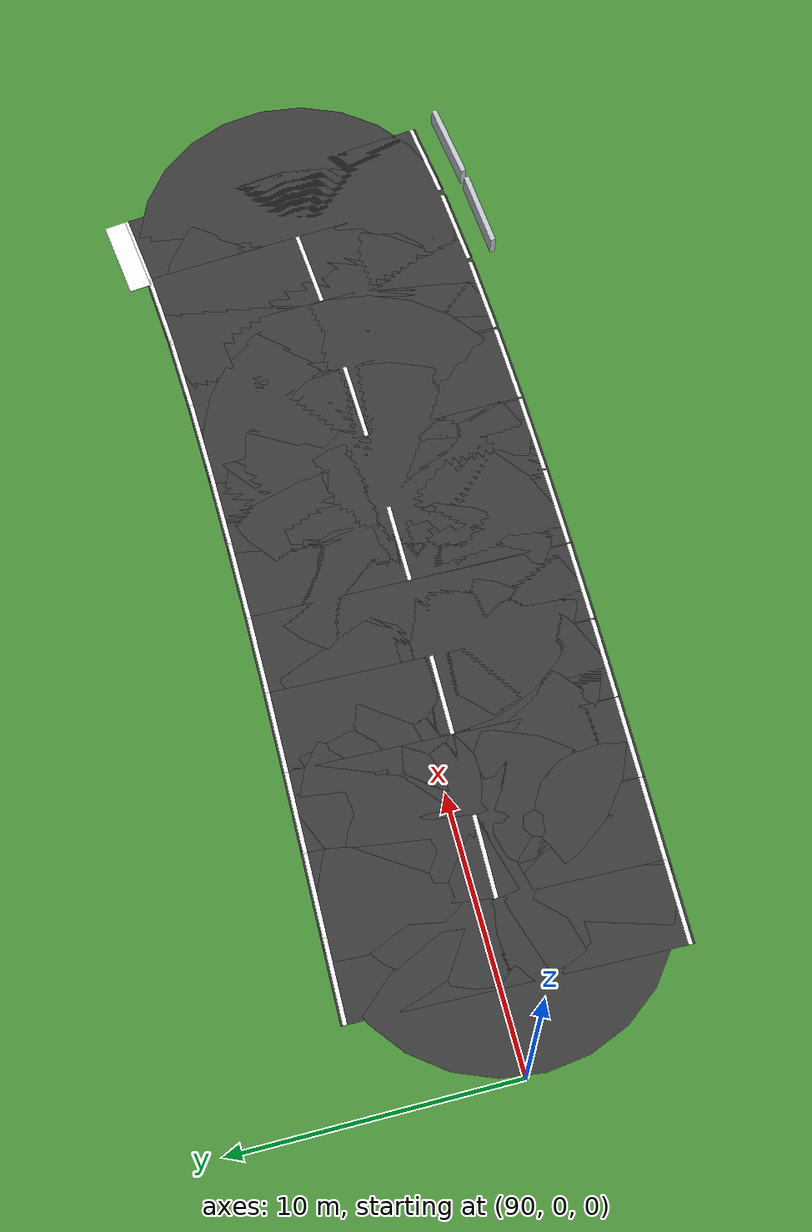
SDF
<sdf version="1.6">
 <world name="sem_silesia_ring_2026">
  <model name="ground_plane">
   <static>true</static>
   <link name="link">
    <collision name="collision">
     <geometry><plane><normal>0 0 1</normal><size>1200 1200</size></plane></geometry>
     <surface><friction><ode><mu>0.6</mu><mu2>0.6</mu2></ode></friction></surface>
    </collision>
    <visual name="visual">
     <geometry><plane><normal>0 0 1</normal><size>1200 1200</size></plane></geometry>
     <material><ambient>0.28 0.55 0.22 1</ambient><diffuse>0.28 0.55 0.22 1</diffuse></material>
    </visual>
   </link>
  </model>
  <model name="road_s31">
   <static>true</static>
   <pose>94.5128 -0.6600 0.0030 0 0 -0.0225</pose>
   <link name="link">
    <visual name="v">
     <geometry><box><size>3.0025 12.0000 0.0060</size></box></geometry>
     <material><ambient>0.22 0.22 0.22 1</ambient><diffuse>0.22 0.22 0.22 1</diffuse></material>
    </visual>
    <collision name="c">
     <geometry><box><size>3.0025 12.0000 0.0060</size></box></geometry>
     <surface><friction><ode><mu>0.9</mu><mu2>0.9</mu2></ode></friction></surface>
    </collision>
   </link>
  </model>
  <model name="wl_L_s31">
   <static>true</static>
   <pose>94.6446 5.1885 0.0070 0 0 -0.0225</pose>
   <link name="link">
    <visual name="v">
     <geometry><box><size>3.0025 0.1500 0.0080</size></box></geometry>
     <material><ambient>0.95 0.95 0.95 1</ambient><diffuse>0.95 0.95 0.95 1</diffuse></material>
    </visual>
   </link>
  </model>
  <model name="wl_R_s31">
   <static>true</static>
   <pose>94.3811 -6.5085 0.0070 0 0 -0.0225</pose>
   <link name="link">
    <visual name="v">
     <geometry><box><size>3.0025 0.1500 0.0080</size></box></geometry>
     <material><ambient>0.95 0.95 0.95 1</ambient><diffuse>0.95 0.95 0.95 1</diffuse></material>
    </visual>
   </link>
  </model>
  <model name="road_s32">
   <static>true</static>
   <pose>97.5146 -0.7277 0.0030 0 0 -0.0226</pose>
   <link name="link">
    <visual name="v">
     <geometry><box><size>3.0025 12.0000 0.0060</size></box></geometry>
     <material><ambient>0.22 0.22 0.22 1</ambient><diffuse>0.22 0.22 0.22 1</diffuse></material>
    </visual>
    <collision name="c">
     <geometry><box><size>3.0025 12.0000 0.0060</size></box></geometry>
     <surface><friction><ode><mu>0.9</mu><mu2>0.9</mu2></ode></friction></surface>
    </collision>
   </link>
  </model>
  <model name="road_jnt32">
   <static>true</static>
   <pose>96.0137 -0.6938 0.0030 0 0 0</pose>
   <link name="link">
    <visual name="v">
     <geometry><cylinder><radius>6.0000</radius><length>0.0060</length></cylinder></geometry>
     <material><ambient>0.22 0.22 0.22 1</ambient><diffuse>0.22 0.22 0.22 1</diffuse></material>
    </visual>
    <collision name="c">
     <geometry><cylinder><radius>6.0000</radius><length>0.0060</length></cylinder></geometry>
     <surface><friction><ode><mu>0.9</mu><mu2>0.9</mu2></ode></friction></surface>
    </collision>
   </link>
  </model>
  <model name="wl_L_s32">
   <static>true</static>
   <pose>97.6468 5.1208 0.0070 0 0 -0.0226</pose>
   <link name="link">
    <visual name="v">
     <geometry><box><size>3.0025 0.1500 0.0080</size></box></geometry>
     <material><ambient>0.95 0.95 0.95 1</ambient><diffuse>0.95 0.95 0.95 1</diffuse></material>
    </visual>
   </link>
  </model>
  <model name="wl_R_s32">
   <static>true</static>
   <pose>97.3824 -6.5763 0.0070 0 0 -0.0226</pose>
   <link name="link">
    <visual name="v">
     <geometry><box><size>3.0025 0.1500 0.0080</size></box></geometry>
     <material><ambient>0.95 0.95 0.95 1</ambient><diffuse>0.95 0.95 0.95 1</diffuse></material>
    </visual>
   </link>
  </model>
  <model name="cd_s32">
   <static>true</static>
   <pose>97.5146 -0.7277 0.0070 0 0 -0.0226</pose>
   <link name="link">
    <visual name="v">
     <geometry><box><size>3.0025 0.1500 0.0080</size></box></geometry>
     <material><ambient>0.95 0.95 0.95 1</ambient><diffuse>0.95 0.95 0.95 1</diffuse></material>
    </visual>
   </link>
  </model>
  <model name="road_s33">
   <static>true</static>
   <pose>100.5164 -0.7921 0.0030 0 0 -0.0203</pose>
   <link name="link">
    <visual name="v">
     <geometry><box><size>3.0025 12.0000 0.0060</size></box></geometry>
     <material><ambient>0.22 0.22 0.22 1</ambient><diffuse>0.22 0.22 0.22 1</diffuse></material>
    </visual>
    <collision name="c">
     <geometry><box><size>3.0025 12.0000 0.0060</size></box></geometry>
     <surface><friction><ode><mu>0.9</mu><mu2>0.9</mu2></ode></friction></surface>
    </collision>
   </link>
  </model>
  <model name="road_jnt33">
   <static>true</static>
   <pose>99.0155 -0.7617 0.0030 0 0 0</pose>
   <link name="link">
    <visual name="v">
     <geometry><cylinder><radius>6.0000</radius><length>0.0060</length></cylinder></geometry>
     <material><ambient>0.22 0.22 0.22 1</ambient><diffuse>0.22 0.22 0.22 1</diffuse></material>
    </visual>
    <collision name="c">
     <geometry><cylinder><radius>6.0000</radius><length>0.0060</length></cylinder></geometry>
     <surface><friction><ode><mu>0.9</mu><mu2>0.9</mu2></ode></friction></surface>
    </collision>
   </link>
  </model>
  <model name="wl_L_s33">
   <static>true</static>
   <pose>100.6350 5.0567 0.0070 0 0 -0.0203</pose>
   <link name="link">
    <visual name="v">
     <geometry><box><size>3.0025 0.1500 0.0080</size></box></geometry>
     <material><ambient>0.95 0.95 0.95 1</ambient><diffuse>0.95 0.95 0.95 1</diffuse></material>
    </visual>
   </link>
  </model>
  <model name="wl_R_s33">
   <static>true</static>
   <pose>100.3979 -6.6409 0.0070 0 0 -0.0203</pose>
   <link name="link">
    <visual name="v">
     <geometry><box><size>3.0025 0.1500 0.0080</size></box></geometry>
     <material><ambient>0.95 0.95 0.95 1</ambient><diffuse>0.95 0.95 0.95 1</diffuse></material>
    </visual>
   </link>
  </model>
  <model name="road_s34">
   <static>true</static>
   <pose>103.5185 -0.8458 0.0030 0 0 -0.0155</pose>
   <link name="link">
    <visual name="v">
     <geometry><box><size>3.0025 12.0000 0.0060</size></box></geometry>
     <material><ambient>0.22 0.22 0.22 1</ambient><diffuse>0.22 0.22 0.22 1</diffuse></material>
    </visual>
    <collision name="c">
     <geometry><box><size>3.0025 12.0000 0.0060</size></box></geometry>
     <surface><friction><ode><mu>0.9</mu><mu2>0.9</mu2></ode></friction></surface>
    </collision>
   </link>
  </model>
  <model name="road_jnt34">
   <static>true</static>
   <pose>102.0174 -0.8225 0.0030 0 0 0</pose>
   <link name="link">
    <visual name="v">
     <geometry><cylinder><radius>6.0000</radius><length>0.0060</length></cylinder></geometry>
     <material><ambient>0.22 0.22 0.22 1</ambient><diffuse>0.22 0.22 0.22 1</diffuse></material>
    </visual>
    <collision name="c">
     <geometry><cylinder><radius>6.0000</radius><length>0.0060</length></cylinder></geometry>
     <surface><friction><ode><mu>0.9</mu><mu2>0.9</mu2></ode></friction></surface>
    </collision>
   </link>
  </model>
  <model name="wl_L_s34">
   <static>true</static>
   <pose>103.6094 5.0035 0.0070 0 0 -0.0155</pose>
   <link name="link">
    <visual name="v">
     <geometry><box><size>3.0025 0.1500 0.0080</size></box></geometry>
     <material><ambient>0.95 0.95 0.95 1</ambient><diffuse>0.95 0.95 0.95 1</diffuse></material>
    </visual>
   </link>
  </model>
  <model name="wl_R_s34">
   <static>true</static>
   <pose>103.4276 -6.6951 0.0070 0 0 -0.0155</pose>
   <link name="link">
    <visual name="v">
     <geometry><box><size>3.0025 0.1500 0.0080</size></box></geometry>
     <material><ambient>0.95 0.95 0.95 1</ambient><diffuse>0.95 0.95 0.95 1</diffuse></material>
    </visual>
   </link>
  </model>
  <model name="cd_s34">
   <static>true</static>
   <pose>103.5185 -0.8458 0.0070 0 0 -0.0155</pose>
   <link name="link">
    <visual name="v">
     <geometry><box><size>3.0025 0.1500 0.0080</size></box></geometry>
     <material><ambient>0.95 0.95 0.95 1</ambient><diffuse>0.95 0.95 0.95 1</diffuse></material>
    </visual>
   </link>
  </model>
  <model name="road_s35">
   <static>true</static>
   <pose>106.5208 -0.8819 0.0030 0 0 -0.0085</pose>
   <link name="link">
    <visual name="v">
     <geometry><box><size>3.0025 12.0000 0.0060</size></box></geometry>
     <material><ambient>0.22 0.22 0.22 1</ambient><diffuse>0.22 0.22 0.22 1</diffuse></material>
    </visual>
    <collision name="c">
     <geometry><box><size>3.0025 12.0000 0.0060</size></box></geometry>
     <surface><friction><ode><mu>0.9</mu><mu2>0.9</mu2></ode></friction></surface>
    </collision>
   </link>
  </model>
  <model name="road_jnt35">
   <static>true</static>
   <pose>105.0196 -0.8691 0.0030 0 0 0</pose>
   <link name="link">
    <visual name="v">
     <geometry><cylinder><radius>6.0000</radius><length>0.0060</length></cylinder></geometry>
     <material><ambient>0.22 0.22 0.22 1</ambient><diffuse>0.22 0.22 0.22 1</diffuse></material>
    </visual>
    <collision name="c">
     <geometry><cylinder><radius>6.0000</radius><length>0.0060</length></cylinder></geometry>
     <surface><friction><ode><mu>0.9</mu><mu2>0.9</mu2></ode></friction></surface>
    </collision>
   </link>
  </model>
  <model name="wl_L_s35">
   <static>true</static>
   <pose>106.5705 4.9679 0.0070 0 0 -0.0085</pose>
   <link name="link">
    <visual name="v">
     <geometry><box><size>3.0025 0.1500 0.0080</size></box></geometry>
     <material><ambient>0.95 0.95 0.95 1</ambient><diffuse>0.95 0.95 0.95 1</diffuse></material>
    </visual>
   </link>
  </model>
  <model name="wl_R_s35">
   <static>true</static>
   <pose>106.4711 -6.7317 0.0070 0 0 -0.0085</pose>
   <link name="link">
    <visual name="v">
     <geometry><box><size>3.0025 0.1500 0.0080</size></box></geometry>
     <material><ambient>0.95 0.95 0.95 1</ambient><diffuse>0.95 0.95 0.95 1</diffuse></material>
    </visual>
   </link>
  </model>
  <model name="road_s36">
   <static>true</static>
   <pose>109.5233 -0.8936 0.0030 0 0 0.0007</pose>
   <link name="link">
    <visual name="v">
     <geometry><box><size>3.0025 12.0000 0.0060</size></box></geometry>
     <material><ambient>0.22 0.22 0.22 1</ambient><diffuse>0.22 0.22 0.22 1</diffuse></material>
    </visual>
    <collision name="c">
     <geometry><box><size>3.0025 12.0000 0.0060</size></box></geometry>
     <surface><friction><ode><mu>0.9</mu><mu2>0.9</mu2></ode></friction></surface>
    </collision>
   </link>
  </model>
  <model name="road_jnt36">
   <static>true</static>
   <pose>108.0220 -0.8947 0.0030 0 0 0</pose>
   <link name="link">
    <visual name="v">
     <geometry><cylinder><radius>6.0000</radius><length>0.0060</length></cylinder></geometry>
     <material><ambient>0.22 0.22 0.22 1</ambient><diffuse>0.22 0.22 0.22 1</diffuse></material>
    </visual>
    <collision name="c">
     <geometry><cylinder><radius>6.0000</radius><length>0.0060</length></cylinder></geometry>
     <surface><friction><ode><mu>0.9</mu><mu2>0.9</mu2></ode></friction></surface>
    </collision>
   </link>
  </model>
  <model name="wl_L_s36">
   <static>true</static>
   <pose>109.5190 4.9564 0.0070 0 0 0.0007</pose>
   <link name="link">
    <visual name="v">
     <geometry><box><size>3.0025 0.1500 0.0080</size></box></geometry>
     <material><ambient>0.95 0.95 0.95 1</ambient><diffuse>0.95 0.95 0.95 1</diffuse></material>
    </visual>
   </link>
  </model>
  <model name="wl_R_s36">
   <static>true</static>
   <pose>109.5275 -6.7436 0.0070 0 0 0.0007</pose>
   <link name="link">
    <visual name="v">
     <geometry><box><size>3.0025 0.1500 0.0080</size></box></geometry>
     <material><ambient>0.95 0.95 0.95 1</ambient><diffuse>0.95 0.95 0.95 1</diffuse></material>
    </visual>
   </link>
  </model>
  <model name="cd_s36">
   <static>true</static>
   <pose>109.5233 -0.8936 0.0070 0 0 0.0007</pose>
   <link name="link">
    <visual name="v">
     <geometry><box><size>3.0025 0.1500 0.0080</size></box></geometry>
     <material><ambient>0.95 0.95 0.95 1</ambient><diffuse>0.95 0.95 0.95 1</diffuse></material>
    </visual>
   </link>
  </model>
  <model name="road_s37">
   <static>true</static>
   <pose>112.5257 -0.8745 0.0030 0 0 0.0120</pose>
   <link name="link">
    <visual name="v">
     <geometry><box><size>3.0025 12.0000 0.0060</size></box></geometry>
     <material><ambient>0.22 0.22 0.22 1</ambient><diffuse>0.22 0.22 0.22 1</diffuse></material>
    </visual>
    <collision name="c">
     <geometry><box><size>3.0025 12.0000 0.0060</size></box></geometry>
     <surface><friction><ode><mu>0.9</mu><mu2>0.9</mu2></ode></friction></surface>
    </collision>
   </link>
  </model>
  <model name="road_jnt37">
   <static>true</static>
   <pose>111.0245 -0.8925 0.0030 0 0 0</pose>
   <link name="link">
    <visual name="v">
     <geometry><cylinder><radius>6.0000</radius><length>0.0060</length></cylinder></geometry>
     <material><ambient>0.22 0.22 0.22 1</ambient><diffuse>0.22 0.22 0.22 1</diffuse></material>
    </visual>
    <collision name="c">
     <geometry><cylinder><radius>6.0000</radius><length>0.0060</length></cylinder></geometry>
     <surface><friction><ode><mu>0.9</mu><mu2>0.9</mu2></ode></friction></surface>
    </collision>
   </link>
  </model>
  <model name="wl_L_s37">
   <static>true</static>
   <pose>112.4556 4.9751 0.0070 0 0 0.0120</pose>
   <link name="link">
    <visual name="v">
     <geometry><box><size>3.0025 0.1500 0.0080</size></box></geometry>
     <material><ambient>0.95 0.95 0.95 1</ambient><diffuse>0.95 0.95 0.95 1</diffuse></material>
    </visual>
   </link>
  </model>
  <model name="wl_R_s37">
   <static>true</static>
   <pose>112.5957 -6.7241 0.0070 0 0 0.0120</pose>
   <link name="link">
    <visual name="v">
     <geometry><box><size>3.0025 0.1500 0.0080</size></box></geometry>
     <material><ambient>0.95 0.95 0.95 1</ambient><diffuse>0.95 0.95 0.95 1</diffuse></material>
    </visual>
   </link>
  </model>
  <model name="road_s38">
   <static>true</static>
   <pose>115.5276 -0.8189 0.0030 0 0 0.0251</pose>
   <link name="link">
    <visual name="v">
     <geometry><box><size>3.0025 12.0000 0.0060</size></box></geometry>
     <material><ambient>0.22 0.22 0.22 1</ambient><diffuse>0.22 0.22 0.22 1</diffuse></material>
    </visual>
    <collision name="c">
     <geometry><box><size>3.0025 12.0000 0.0060</size></box></geometry>
     <surface><friction><ode><mu>0.9</mu><mu2>0.9</mu2></ode></friction></surface>
    </collision>
   </link>
  </model>
  <model name="road_jnt38">
   <static>true</static>
   <pose>114.0268 -0.8566 0.0030 0 0 0</pose>
   <link name="link">
    <visual name="v">
     <geometry><cylinder><radius>6.0000</radius><length>0.0060</length></cylinder></geometry>
     <material><ambient>0.22 0.22 0.22 1</ambient><diffuse>0.22 0.22 0.22 1</diffuse></material>
    </visual>
    <collision name="c">
     <geometry><cylinder><radius>6.0000</radius><length>0.0060</length></cylinder></geometry>
     <surface><friction><ode><mu>0.9</mu><mu2>0.9</mu2></ode></friction></surface>
    </collision>
   </link>
  </model>
  <model name="wl_L_s38">
   <static>true</static>
   <pose>115.3809 5.0293 0.0070 0 0 0.0251</pose>
   <link name="link">
    <visual name="v">
     <geometry><box><size>3.0025 0.1500 0.0080</size></box></geometry>
     <material><ambient>0.95 0.95 0.95 1</ambient><diffuse>0.95 0.95 0.95 1</diffuse></material>
    </visual>
   </link>
  </model>
  <model name="wl_R_s38">
   <static>true</static>
   <pose>115.6743 -6.6671 0.0070 0 0 0.0251</pose>
   <link name="link">
    <visual name="v">
     <geometry><box><size>3.0025 0.1500 0.0080</size></box></geometry>
     <material><ambient>0.95 0.95 0.95 1</ambient><diffuse>0.95 0.95 0.95 1</diffuse></material>
    </visual>
   </link>
  </model>
  <model name="cd_s38">
   <static>true</static>
   <pose>115.5276 -0.8189 0.0070 0 0 0.0251</pose>
   <link name="link">
    <visual name="v">
     <geometry><box><size>3.0025 0.1500 0.0080</size></box></geometry>
     <material><ambient>0.95 0.95 0.95 1</ambient><diffuse>0.95 0.95 0.95 1</diffuse></material>
    </visual>
   </link>
  </model>
  <model name="road_s39">
   <static>true</static>
   <pose>118.5282 -0.7160 0.0030 0 0 0.0434</pose>
   <link name="link">
    <visual name="v">
     <geometry><box><size>3.0025 12.0000 0.0060</size></box></geometry>
     <material><ambient>0.22 0.22 0.22 1</ambient><diffuse>0.22 0.22 0.22 1</diffuse></material>
    </visual>
    <collision name="c">
     <geometry><box><size>3.0025 12.0000 0.0060</size></box></geometry>
     <surface><friction><ode><mu>0.9</mu><mu2>0.9</mu2></ode></friction></surface>
    </collision>
   </link>
  </model>
  <model name="road_jnt39">
   <static>true</static>
   <pose>117.0284 -0.7812 0.0030 0 0 0</pose>
   <link name="link">
    <visual name="v">
     <geometry><cylinder><radius>6.0000</radius><length>0.0060</length></cylinder></geometry>
     <material><ambient>0.22 0.22 0.22 1</ambient><diffuse>0.22 0.22 0.22 1</diffuse></material>
    </visual>
    <collision name="c">
     <geometry><cylinder><radius>6.0000</radius><length>0.0060</length></cylinder></geometry>
     <surface><friction><ode><mu>0.9</mu><mu2>0.9</mu2></ode></friction></surface>
    </collision>
   </link>
  </model>
  <model name="wl_L_s39">
   <static>true</static>
   <pose>118.2742 5.1284 0.0070 0 0 0.0434</pose>
   <link name="link">
    <visual name="v">
     <geometry><box><size>3.0025 0.1500 0.0080</size></box></geometry>
     <material><ambient>0.95 0.95 0.95 1</ambient><diffuse>0.95 0.95 0.95 1</diffuse></material>
    </visual>
   </link>
  </model>
  <model name="wl_R_s39">
   <static>true</static>
   <pose>118.7822 -6.5605 0.0070 0 0 0.0434</pose>
   <link name="link">
    <visual name="v">
     <geometry><box><size>3.0025 0.1500 0.0080</size></box></geometry>
     <material><ambient>0.95 0.95 0.95 1</ambient><diffuse>0.95 0.95 0.95 1</diffuse></material>
    </visual>
   </link>
  </model>
  <model name="road_s40">
   <static>true</static>
   <pose>121.5251 -0.5399 0.0030 0 0 0.0740</pose>
   <link name="link">
    <visual name="v">
     <geometry><box><size>3.0024 12.0000 0.0060</size></box></geometry>
     <material><ambient>0.22 0.22 0.22 1</ambient><diffuse>0.22 0.22 0.22 1</diffuse></material>
    </visual>
    <collision name="c">
     <geometry><box><size>3.0024 12.0000 0.0060</size></box></geometry>
     <surface><friction><ode><mu>0.9</mu><mu2>0.9</mu2></ode></friction></surface>
    </collision>
   </link>
  </model>
  <model name="road_jnt40">
   <static>true</static>
   <pose>120.0280 -0.6509 0.0030 0 0 0</pose>
   <link name="link">
    <visual name="v">
     <geometry><cylinder><radius>6.0000</radius><length>0.0060</length></cylinder></geometry>
     <material><ambient>0.22 0.22 0.22 1</ambient><diffuse>0.22 0.22 0.22 1</diffuse></material>
    </visual>
    <collision name="c">
     <geometry><cylinder><radius>6.0000</radius><length>0.0060</length></cylinder></geometry>
     <surface><friction><ode><mu>0.9</mu><mu2>0.9</mu2></ode></friction></surface>
    </collision>
   </link>
  </model>
  <model name="wl_L_s40">
   <static>true</static>
   <pose>121.0925 5.2941 0.0070 0 0 0.0740</pose>
   <link name="link">
    <visual name="v">
     <geometry><box><size>3.0024 0.1500 0.0080</size></box></geometry>
     <material><ambient>0.95 0.95 0.95 1</ambient><diffuse>0.95 0.95 0.95 1</diffuse></material>
    </visual>
   </link>
  </model>
  <model name="wl_R_s40">
   <static>true</static>
   <pose>121.9577 -6.3738 0.0070 0 0 0.0740</pose>
   <link name="link">
    <visual name="v">
     <geometry><box><size>3.0024 0.1500 0.0080</size></box></geometry>
     <material><ambient>0.95 0.95 0.95 1</ambient><diffuse>0.95 0.95 0.95 1</diffuse></material>
    </visual>
   </link>
  </model>
  <model name="cd_s40">
   <static>true</static>
   <pose>121.5251 -0.5399 0.0070 0 0 0.0740</pose>
   <link name="link">
    <visual name="v">
     <geometry><box><size>3.0024 0.1500 0.0080</size></box></geometry>
     <material><ambient>0.95 0.95 0.95 1</ambient><diffuse>0.95 0.95 0.95 1</diffuse></material>
    </visual>
   </link>
  </model>
  <model name="arm_outR_40">
   <static>true</static>
   <pose>122.0279 -7.3212 0.4000 0 0 0.0740</pose>
   <link name="link">
    <visual name="v">
     <geometry><box><size>3.0024 0.2000 0.8000</size></box></geometry>
     <material><ambient>0.75 0.77 0.80 1</ambient><diffuse>0.75 0.77 0.80 1</diffuse></material>
    </visual>
    <collision name="c">
     <geometry><box><size>3.0024 0.2000 0.8000</size></box></geometry>
     <surface><friction><ode><mu>0.8</mu><mu2>0.8</mu2></ode></friction></surface>
    </collision>
   </link>
  </model>
  <model name="road_s41">
   <static>true</static>
   <pose>124.5127 -0.2513 0.0030 0 0 0.1185</pose>
   <link name="link">
    <visual name="v">
     <geometry><box><size>3.0022 12.0000 0.0060</size></box></geometry>
     <material><ambient>0.22 0.22 0.22 1</ambient><diffuse>0.22 0.22 0.22 1</diffuse></material>
    </visual>
    <collision name="c">
     <geometry><box><size>3.0022 12.0000 0.0060</size></box></geometry>
     <surface><friction><ode><mu>0.9</mu><mu2>0.9</mu2></ode></friction></surface>
    </collision>
   </link>
  </model>
  <model name="road_jnt41">
   <static>true</static>
   <pose>123.0222 -0.4288 0.0030 0 0 0</pose>
   <link name="link">
    <visual name="v">
     <geometry><cylinder><radius>6.0000</radius><length>0.0060</length></cylinder></geometry>
     <material><ambient>0.22 0.22 0.22 1</ambient><diffuse>0.22 0.22 0.22 1</diffuse></material>
    </visual>
    <collision name="c">
     <geometry><cylinder><radius>6.0000</radius><length>0.0060</length></cylinder></geometry>
     <surface><friction><ode><mu>0.9</mu><mu2>0.9</mu2></ode></friction></surface>
    </collision>
   </link>
  </model>
  <model name="wl_L_s41">
   <static>true</static>
   <pose>123.8209 5.5576 0.0070 0 0 0.1185</pose>
   <link name="link">
    <visual name="v">
     <geometry><box><size>3.0022 0.1500 0.0080</size></box></geometry>
     <material><ambient>0.95 0.95 0.95 1</ambient><diffuse>0.95 0.95 0.95 1</diffuse></material>
    </visual>
   </link>
  </model>
  <model name="wl_R_s41">
   <static>true</static>
   <pose>125.2045 -6.0603 0.0070 0 0 0.1185</pose>
   <link name="link">
    <visual name="v">
     <geometry><box><size>3.0022 0.1500 0.0080</size></box></geometry>
     <material><ambient>0.95 0.95 0.95 1</ambient><diffuse>0.95 0.95 0.95 1</diffuse></material>
    </visual>
   </link>
  </model>
  <model name="kerb_L_41">
   <static>true</static>
   <pose>123.7677 6.0045 0.0120 0 0 0.1185</pose>
   <link name="link">
    <visual name="v">
     <geometry><box><size>3.0022 0.8000 0.0160</size></box></geometry>
     <material><ambient>0.95 0.95 0.95 1</ambient><diffuse>0.95 0.95 0.95 1</diffuse></material>
    </visual>
   </link>
  </model>
  <model name="arm_outR_41">
   <static>true</static>
   <pose>125.3169 -7.0036 0.4000 0 0 0.1185</pose>
   <link name="link">
    <visual name="v">
     <geometry><box><size>3.0022 0.2000 0.8000</size></box></geometry>
     <material><ambient>0.75 0.77 0.80 1</ambient><diffuse>0.75 0.77 0.80 1</diffuse></material>
    </visual>
    <collision name="c">
     <geometry><box><size>3.0022 0.2000 0.8000</size></box></geometry>
     <surface><friction><ode><mu>0.8</mu><mu2>0.8</mu2></ode></friction></surface>
    </collision>
   </link>
  </model>
 </world>
</sdf>
